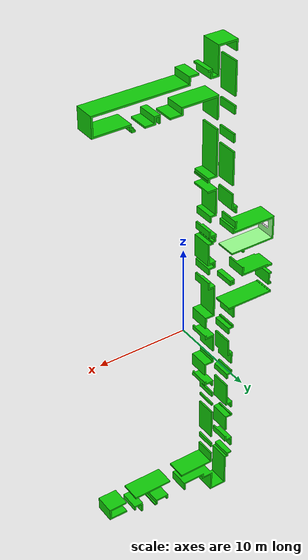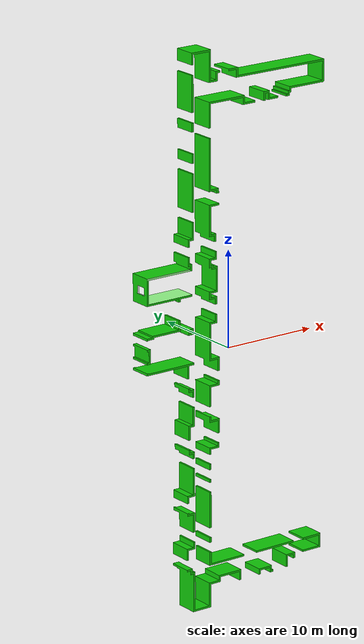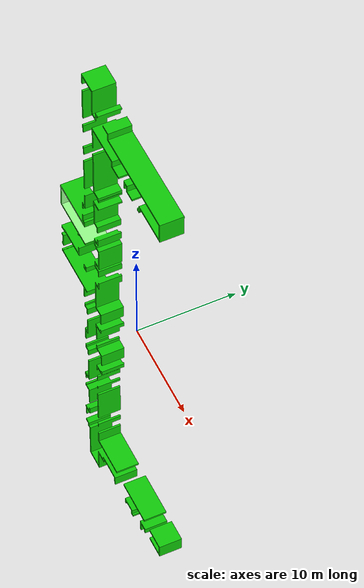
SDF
<?xml version="1.0"?>
<sdf version='1.6'>
  <model name='UT_Hallway_fin'>
    <link name='UT_Hallway_fin'>
      <pose frame=''>0 0 0 0 -0 0</pose>
      <inertial>
        <pose frame=''>-3.8601 -1.15 -4.0024 1.57 -0 0</pose>
        <mass>19841</mass>
        <inertia>
          <ixx>5.721e+06</ixx>
          <ixy>-5.71142e-11</ixy>
          <ixz>847840</ixz>
          <iyy>6.0815e+06</iyy>
          <iyz>-3.47138e-10</iyz>
          <izz>378020</izz>
        </inertia>
      </inertial>
      <collision name='UT_Hallway_fin_collision'>
        <pose frame=''>0 0 0 1.5708 -0 0</pose>
        <geometry>
          <mesh>
            <scale>1 1 1</scale>
            <uri>model://UT_Hallway_fin/meshes/UT_Hallway_fin.dae</uri>
          </mesh>
        </geometry>
      </collision>
      <visual name='UT_Hallway_fin_visual'>
        <pose frame=''>0 0 0 1.5708 -0 0</pose>
        <geometry>
          <mesh>
            <scale>1 1 1</scale>
            <uri>model://UT_Hallway_fin/meshes/UT_Hallway_fin.dae</uri>
          </mesh>
        </geometry>
      </visual>
    </link>
  </model>
</sdf>
